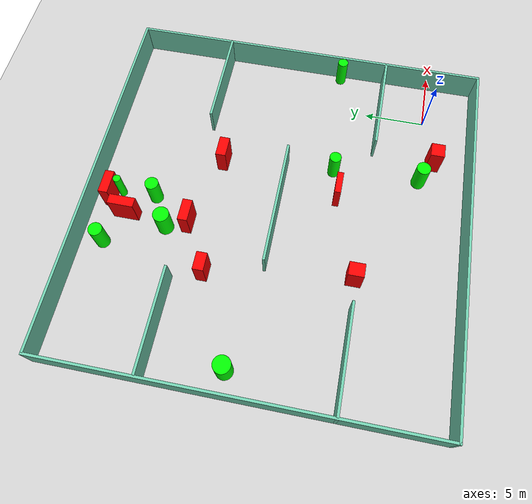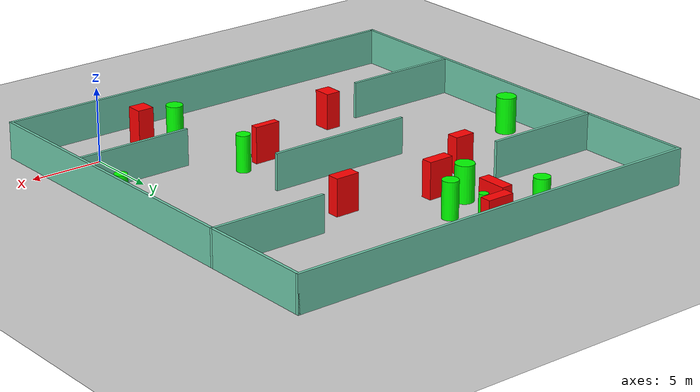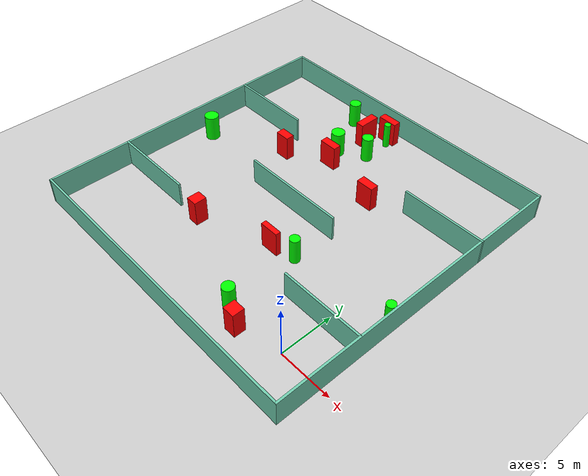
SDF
<sdf version="1.7">
 <world name="default">
  <light name="sun" type="directional">
   <pose>0 0 10 0 -0 0</pose>
   <diffuse>0.8 0.8 0.8 1</diffuse>
   <specular>0.2 0.2 0.2 1</specular>
   <attenuation>
    <range>1000</range>
    <constant>0.9</constant>
    <linear>0.01</linear>
    <quadratic>0.001</quadratic>
   </attenuation>
   <direction>-0.5 0.1 -0.9</direction>
   <spot><inner_angle>0</inner_angle><outer_angle>0</outer_angle><falloff>0</falloff></spot>
  </light>
  <model name="ground_plane">
   <static>1</static>
   <link name="link">
    <collision name="collision">
     <geometry><plane><normal>0 0 1</normal><size>100 100</size></plane></geometry>
     <surface>
      <contact><collide_bitmask>65535</collide_bitmask></contact>
      <friction><ode><mu>100</mu><mu2>50</mu2></ode></friction>
     </surface>
    </collision>
    <visual name="visual">
     <cast_shadows>0</cast_shadows>
     <geometry><plane><normal>0 0 1</normal><size>100 100</size></plane></geometry>
     <material>
      <script><uri>file://media/materials/scripts/gazebo.material</uri><name>Gazebo/Grey</name></script>
     </material>
    </visual>
   </link>
  </model>
  <gravity>0 0 -9.8</gravity>
  <magnetic_field>6e-06 2.3e-05 -4.2e-05</magnetic_field>
  <atmosphere type="adiabatic"/>
  <physics type="ode">
   <max_step_size>0.001</max_step_size>
   <real_time_factor>1</real_time_factor>
   <real_time_update_rate>1000</real_time_update_rate>
  </physics>
  <scene><ambient>0.4 0.4 0.4 1</ambient><background>0.7 0.7 0.7 1</background><shadows>1</shadows></scene>
  <spherical_coordinates>
   <surface_model>EARTH_WGS84</surface_model>
   <latitude_deg>0</latitude_deg>
   <longitude_deg>0</longitude_deg>
   <elevation>0</elevation>
   <heading_deg>0</heading_deg>
  </spherical_coordinates>
  <model name="my_base_walls">
   <link name="Wall_10">
    <collision name="Wall_10_Collision">
     <geometry><box><size>8.2 0.2 2.5</size></box></geometry>
     <pose>0 0 1.25 0 -0 0</pose>
    </collision>
    <visual name="Wall_10_Visual">
     <pose>0 0 1.25 0 -0 0</pose>
     <geometry><box><size>8.2 0.2 2.5</size></box></geometry>
     <material>
      <script><uri>file://media/materials/scripts/gazebo.material</uri><name>Gazebo/Grey</name></script>
      <ambient>0.435294 0.796078 0.67451 1</ambient>
     </material>
     <meta><layer>0</layer></meta>
    </visual>
    <pose>-11 -7 0 0 -0 0</pose>
   </link>
   <link name="Wall_12">
    <collision name="Wall_12_Collision">
     <geometry><box><size>8.2 0.2 2.5</size></box></geometry>
     <pose>0 0 1.25 0 -0 0</pose>
    </collision>
    <visual name="Wall_12_Visual">
     <pose>0 0 1.25 0 -0 0</pose>
     <geometry><box><size>8.2 0.2 2.5</size></box></geometry>
     <material>
      <script><uri>file://media/materials/scripts/gazebo.material</uri><name>Gazebo/Grey</name></script>
      <ambient>0.435294 0.796078 0.67451 1</ambient>
     </material>
     <meta><layer>0</layer></meta>
    </visual>
    <pose>-11 7 0 0 -0 0</pose>
   </link>
   <link name="Wall_14">
    <collision name="Wall_14_Collision">
     <geometry><box><size>8.2 0.2 2.5</size></box></geometry>
     <pose>0 0 1.25 0 -0 0</pose>
    </collision>
    <visual name="Wall_14_Visual">
     <pose>0 0 1.25 0 -0 0</pose>
     <geometry><box><size>8.2 0.2 2.5</size></box></geometry>
     <material>
      <script><uri>file://media/materials/scripts/gazebo.material</uri><name>Gazebo/Grey</name></script>
      <ambient>0.435294 0.796078 0.67451 1</ambient>
     </material>
     <meta><layer>0</layer></meta>
    </visual>
    <pose>11 7 0 0 -0 3.14159</pose>
   </link>
   <link name="Wall_16">
    <collision name="Wall_16_Collision">
     <geometry><box><size>10.2 0.2 2.5</size></box></geometry>
     <pose>0 0 1.25 0 -0 0</pose>
    </collision>
    <visual name="Wall_16_Visual">
     <pose>0 0 1.25 0 -0 0</pose>
     <geometry><box><size>10.2 0.2 2.5</size></box></geometry>
     <material>
      <script><uri>file://media/materials/scripts/gazebo.material</uri><name>Gazebo/Grey</name></script>
      <ambient>0.435294 0.796078 0.67451 1</ambient>
     </material>
     <meta><layer>0</layer></meta>
    </visual>
    <pose>0 0 0 0 -0 3.14159</pose>
   </link>
   <link name="Wall_2">
    <collision name="Wall_2_Collision">
     <geometry><box><size>30.2 0.2 2.5</size></box></geometry>
     <pose>0 0 1.25 0 -0 0</pose>
    </collision>
    <visual name="Wall_2_Visual">
     <pose>0 0 1.25 0 -0 0</pose>
     <geometry><box><size>30.2 0.2 2.5</size></box></geometry>
     <material>
      <script><uri>file://media/materials/scripts/gazebo.material</uri><name>Gazebo/Grey</name></script>
      <ambient>0.435294 0.796078 0.67451 1</ambient>
     </material>
     <meta><layer>0</layer></meta>
    </visual>
    <pose>0 -15 0 0 -0 3.14159</pose>
   </link>
   <link name="Wall_3">
    <collision name="Wall_3_Collision">
     <geometry><box><size>30.2 0.2 2.5</size></box></geometry>
     <pose>0 0 1.25 0 -0 0</pose>
    </collision>
    <visual name="Wall_3_Visual">
     <pose>0 0 1.25 0 -0 0</pose>
     <geometry><box><size>30.2 0.2 2.5</size></box></geometry>
     <material>
      <script><uri>file://media/materials/scripts/gazebo.material</uri><name>Gazebo/Grey</name></script>
      <ambient>0.435294 0.796078 0.67451 1</ambient>
     </material>
     <meta><layer>0</layer></meta>
    </visual>
    <pose>-15 0 0 0 -0 1.5708</pose>
   </link>
   <link name="Wall_4">
    <collision name="Wall_4_Collision">
     <geometry><box><size>30.2 0.2 2.5</size></box></geometry>
     <pose>0 0 1.25 0 -0 0</pose>
    </collision>
    <visual name="Wall_4_Visual">
     <pose>0 0 1.25 0 -0 0</pose>
     <geometry><box><size>30.2 0.2 2.5</size></box></geometry>
     <material>
      <script><uri>file://media/materials/scripts/gazebo.material</uri><name>Gazebo/Grey</name></script>
      <ambient>0.435294 0.796078 0.67451 1</ambient>
     </material>
     <meta><layer>0</layer></meta>
    </visual>
    <pose>0 15 0 0 -0 0</pose>
   </link>
   <link name="Wall_6">
    <collision name="Wall_6_Collision">
     <geometry><box><size>30.2 0.2 2.5</size></box></geometry>
     <pose>0 0 1.25 0 -0 0</pose>
    </collision>
    <visual name="Wall_6_Visual">
     <pose>0 0 1.25 0 -0 0</pose>
     <geometry><box><size>30.2 0.2 2.5</size></box></geometry>
     <material>
      <script><uri>file://media/materials/scripts/gazebo.material</uri><name>Gazebo/Grey</name></script>
      <ambient>0.435294 0.796078 0.67451 1</ambient>
     </material>
     <meta><layer>0</layer></meta>
    </visual>
    <pose>15 0 0 0 -0 1.5708</pose>
   </link>
   <link name="Wall_8">
    <collision name="Wall_8_Collision">
     <geometry><box><size>8.2 0.2 2.5</size></box></geometry>
     <pose>0 0 1.25 0 -0 0</pose>
    </collision>
    <visual name="Wall_8_Visual">
     <pose>0 0 1.25 0 -0 0</pose>
     <geometry><box><size>8.2 0.2 2.5</size></box></geometry>
     <material>
      <script><uri>file://media/materials/scripts/gazebo.material</uri><name>Gazebo/Grey</name></script>
      <ambient>0.435294 0.796078 0.67451 1</ambient>
     </material>
     <meta><layer>0</layer></meta>
    </visual>
    <pose>11 -7 0 0 -0 3.14159</pose>
   </link>
   <static>1</static>
   <pose>-11 11 0 0 -0 0</pose>
  </model>
  <model name="cylinder1">
   <static>1</static>
   <link name="link">
    <inertial>
     <mass>1</mass>
     <inertia><ixx>0.5</ixx><ixy>0</ixy><ixz>0</ixz><iyy>0.5</iyy><iyz>0</iyz><izz>1</izz></inertia>
    </inertial>
    <collision name="collision">
     <geometry><cylinder><radius>0.5469478343509668</radius><length>2.5</length></cylinder></geometry>
    </collision>
    <visual name="visual">
     <geometry><cylinder><radius>0.5469478343509668</radius><length>2.5</length></cylinder></geometry>
     <material>
      <ambient>0 1 0 1</ambient>
      <diffuse>0 1 0 1</diffuse>
      <specular>0.1 0.1 0.1 1</specular>
      <emissive>0 0 0 0</emissive>
     </material>
    </visual>
   </link>
   <pose>-16.111838705038043 24.09502893183314 1.25 0 0 0</pose>
  </model>
  <model name="cylinder2">
   <static>1</static>
   <link name="link">
    <inertial>
     <mass>1</mass>
     <inertia><ixx>0.5</ixx><ixy>0</ixy><ixz>0</ixz><iyy>0.5</iyy><iyz>0</iyz><izz>1</izz></inertia>
    </inertial>
    <collision name="collision">
     <geometry><cylinder><radius>0.3085206245426753</radius><length>2.5</length></cylinder></geometry>
    </collision>
    <visual name="visual">
     <geometry><cylinder><radius>0.3085206245426753</radius><length>2.5</length></cylinder></geometry>
     <material>
      <ambient>0 1 0 1</ambient>
      <diffuse>0 1 0 1</diffuse>
      <specular>0.1 0.1 0.1 1</specular>
      <emissive>0 0 0 0</emissive>
     </material>
    </visual>
   </link>
   <pose>-11.586611646357774 23.851511104470603 1.25 0 0 0</pose>
  </model>
  <model name="cylinder3">
   <static>1</static>
   <link name="link">
    <inertial>
     <mass>1</mass>
     <inertia><ixx>0.5</ixx><ixy>0</ixy><ixz>0</ixz><iyy>0.5</iyy><iyz>0</iyz><izz>1</izz></inertia>
    </inertial>
    <collision name="collision">
     <geometry><cylinder><radius>0.6422752736959326</radius><length>2.5</length></cylinder></geometry>
    </collision>
    <visual name="visual">
     <geometry><cylinder><radius>0.6422752736959326</radius><length>2.5</length></cylinder></geometry>
     <material>
      <ambient>0 1 0 1</ambient>
      <diffuse>0 1 0 1</diffuse>
      <specular>0.1 0.1 0.1 1</specular>
      <emissive>0 0 0 0</emissive>
     </material>
    </visual>
   </link>
   <pose>-13.949176204703198 19.53407345399616 1.25 0 0 0</pose>
  </model>
  <model name="cylinder4">
   <static>1</static>
   <link name="link">
    <inertial>
     <mass>1</mass>
     <inertia><ixx>0.5</ixx><ixy>0</ixy><ixz>0</ixz><iyy>0.5</iyy><iyz>0</iyz><izz>1</izz></inertia>
    </inertial>
    <collision name="collision">
     <geometry><cylinder><radius>0.5374895704451692</radius><length>2.5</length></cylinder></geometry>
    </collision>
    <visual name="visual">
     <geometry><cylinder><radius>0.5374895704451692</radius><length>2.5</length></cylinder></geometry>
     <material>
      <ambient>0 1 0 1</ambient>
      <diffuse>0 1 0 1</diffuse>
      <specular>0.1 0.1 0.1 1</specular>
      <emissive>0 0 0 0</emissive>
     </material>
    </visual>
   </link>
   <pose>-11.476779475247824 21.00674892619971 1.25 0 0 0</pose>
  </model>
  <model name="cylinder5">
   <static>1</static>
   <link name="link">
    <inertial>
     <mass>1</mass>
     <inertia><ixx>0.5</ixx><ixy>0</ixy><ixz>0</ixz><iyy>0.5</iyy><iyz>0</iyz><izz>1</izz></inertia>
    </inertial>
    <collision name="collision">
     <geometry><cylinder><radius>0.42837669836683734</radius><length>2.5</length></cylinder></geometry>
    </collision>
    <visual name="visual">
     <geometry><cylinder><radius>0.42837669836683734</radius><length>2.5</length></cylinder></geometry>
     <material>
      <ambient>0 1 0 1</ambient>
      <diffuse>0 1 0 1</diffuse>
      <specular>0.1 0.1 0.1 1</specular>
      <emissive>0 0 0 0</emissive>
     </material>
    </visual>
   </link>
   <pose>3.4712589163161205 7.796891115985936 1.25 0 0 0</pose>
  </model>
  <model name="cylinder6">
   <static>1</static>
   <link name="link">
    <inertial>
     <mass>1</mass>
     <inertia><ixx>0.5</ixx><ixy>0</ixy><ixz>0</ixz><iyy>0.5</iyy><iyz>0</iyz><izz>1</izz></inertia>
    </inertial>
    <collision name="collision">
     <geometry><cylinder><radius>0.47357204938077957</radius><length>2.5</length></cylinder></geometry>
    </collision>
    <visual name="visual">
     <geometry><cylinder><radius>0.47357204938077957</radius><length>2.5</length></cylinder></geometry>
     <material>
      <ambient>0 1 0 1</ambient>
      <diffuse>0 1 0 1</diffuse>
      <specular>0.1 0.1 0.1 1</specular>
      <emissive>0 0 0 0</emissive>
     </material>
    </visual>
   </link>
   <pose>-6.313261067343415 7.034504877293548 1.25 0 0 0</pose>
  </model>
  <model name="cylinder7">
   <static>1</static>
   <link name="link">
    <inertial>
     <mass>1</mass>
     <inertia><ixx>0.5</ixx><ixy>0</ixy><ixz>0</ixz><iyy>0.5</iyy><iyz>0</iyz><izz>1</izz></inertia>
    </inertial>
    <collision name="collision">
     <geometry><cylinder><radius>0.5656466809598588</radius><length>2.5</length></cylinder></geometry>
    </collision>
    <visual name="visual">
     <geometry><cylinder><radius>0.5656466809598588</radius><length>2.5</length></cylinder></geometry>
     <material>
      <ambient>0 1 0 1</ambient>
      <diffuse>0 1 0 1</diffuse>
      <specular>0.1 0.1 0.1 1</specular>
      <emissive>0 0 0 0</emissive>
     </material>
    </visual>
   </link>
   <pose>-5.98872167184456 -0.08263630371444908 1.25 0 0 0</pose>
  </model>
  <model name="cylinder8">
   <static>1</static>
   <link name="link">
    <inertial>
     <mass>1</mass>
     <inertia><ixx>0.5</ixx><ixy>0</ixy><ixz>0</ixz><iyy>0.5</iyy><iyz>0</iyz><izz>1</izz></inertia>
    </inertial>
    <collision name="collision">
     <geometry><cylinder><radius>0.6706366149159015</radius><length>2.5</length></cylinder></geometry>
    </collision>
    <visual name="visual">
     <geometry><cylinder><radius>0.6706366149159015</radius><length>2.5</length></cylinder></geometry>
     <material>
      <ambient>0 1 0 1</ambient>
      <diffuse>0 1 0 1</diffuse>
      <specular>0.1 0.1 0.1 1</specular>
      <emissive>0 0 0 0</emissive>
     </material>
    </visual>
   </link>
   <pose>-24.096641085200805 12.273918755409806 1.25 0 0 0</pose>
  </model>
  <model name="box1">
   <static>1</static>
   <link name="link">
    <inertial>
     <mass>1</mass>
     <inertia><ixx>0.083</ixx><ixy>0</ixy><ixz>0</ixz><iyy>0.083</iyy><iyz>0</iyz><izz>0.083</izz></inertia>
    </inertial>
    <collision name="collision">
     <geometry><box><size>1.4205923020714755 0.8422332564018421 2.5</size></box></geometry>
    </collision>
    <visual name="visual">
     <geometry><box><size>1.4205923020714755 0.8422332564018421 2.5</size></box></geometry>
     <material>
      <ambient>1 0 0 1</ambient>
      <diffuse>1 0 0 1</diffuse>
      <specular>0.1 0.1 0.1 1</specular>
      <emissive>0 0 0 0</emissive>
     </material>
    </visual>
    <sensor name="my_contact" type="contact">
     <contact><collision>box_collision</collision><topic>__default_topic__</topic></contact>
    </sensor>
   </link>
   <pose>-17.090920262770197 15.619570191653363 1.25 0 0 0</pose>
  </model>
  <model name="box2">
   <static>1</static>
   <link name="link">
    <inertial>
     <mass>1</mass>
     <inertia><ixx>0.083</ixx><ixy>0</ixy><ixz>0</ixz><iyy>0.083</iyy><iyz>0</iyz><izz>0.083</izz></inertia>
    </inertial>
    <collision name="collision">
     <geometry><box><size>1.826314991946441 0.5083252615027334 2.5</size></box></geometry>
    </collision>
    <visual name="visual">
     <geometry><box><size>1.826314991946441 0.5083252615027334 2.5</size></box></geometry>
     <material>
      <ambient>1 0 0 1</ambient>
      <diffuse>1 0 0 1</diffuse>
      <specular>0.1 0.1 0.1 1</specular>
      <emissive>0 0 0 0</emissive>
     </material>
    </visual>
    <sensor name="my_contact" type="contact">
     <contact><collision>box_collision</collision><topic>__default_topic__</topic></contact>
    </sensor>
   </link>
   <pose>-8.534072096459937 6.410214371915288 1.25 0 0 0</pose>
  </model>
  <model name="box3">
   <static>1</static>
   <link name="link">
    <inertial>
     <mass>1</mass>
     <inertia><ixx>0.083</ixx><ixy>0</ixy><ixz>0</ixz><iyy>0.083</iyy><iyz>0</iyz><izz>0.083</izz></inertia>
    </inertial>
    <collision name="collision">
     <geometry><box><size>1.9091024183881828 0.7470452627150147 2.5</size></box></geometry>
    </collision>
    <visual name="visual">
     <geometry><box><size>1.9091024183881828 0.7470452627150147 2.5</size></box></geometry>
     <material>
      <ambient>1 0 0 1</ambient>
      <diffuse>1 0 0 1</diffuse>
      <specular>0.1 0.1 0.1 1</specular>
      <emissive>0 0 0 0</emissive>
     </material>
    </visual>
    <sensor name="my_contact" type="contact">
     <contact><collision>box_collision</collision><topic>__default_topic__</topic></contact>
    </sensor>
   </link>
   <pose>-11.982399815790973 24.588799454634284 1.25 0 0 0</pose>
  </model>
  <model name="box4">
   <static>1</static>
   <link name="link">
    <inertial>
     <mass>1</mass>
     <inertia><ixx>0.083</ixx><ixy>0</ixy><ixz>0</ixz><iyy>0.083</iyy><iyz>0</iyz><izz>0.083</izz></inertia>
    </inertial>
    <collision name="collision">
     <geometry><box><size>1.6933960584311307 0.8257372406803483 2.5</size></box></geometry>
    </collision>
    <visual name="visual">
     <geometry><box><size>1.6933960584311307 0.8257372406803483 2.5</size></box></geometry>
     <material>
      <ambient>1 0 0 1</ambient>
      <diffuse>1 0 0 1</diffuse>
      <specular>0.1 0.1 0.1 1</specular>
      <emissive>0 0 0 0</emissive>
     </material>
    </visual>
    <sensor name="my_contact" type="contact">
     <contact><collision>box_collision</collision><topic>__default_topic__</topic></contact>
    </sensor>
   </link>
   <pose>-7.032159873714736 16.273251538383114 1.25 0 0 0</pose>
  </model>
  <model name="box5">
   <static>1</static>
   <link name="link">
    <inertial>
     <mass>1</mass>
     <inertia><ixx>0.083</ixx><ixy>0</ixy><ixz>0</ixz><iyy>0.083</iyy><iyz>0</iyz><izz>0.083</izz></inertia>
    </inertial>
    <collision name="collision">
     <geometry><box><size>1.1510848471789643 1.1109753085252778 2.5</size></box></geometry>
    </collision>
    <visual name="visual">
     <geometry><box><size>1.1510848471789643 1.1109753085252778 2.5</size></box></geometry>
     <material>
      <ambient>1 0 0 1</ambient>
      <diffuse>1 0 0 1</diffuse>
      <specular>0.1 0.1 0.1 1</specular>
      <emissive>0 0 0 0</emissive>
     </material>
    </visual>
    <sensor name="my_contact" type="contact">
     <contact><collision>box_collision</collision><topic>__default_topic__</topic></contact>
    </sensor>
   </link>
   <pose>-4.047615185126828 -1.0970414584558914 1.25 0 0 0</pose>
  </model>
  <model name="box6">
   <static>1</static>
   <link name="link">
    <inertial>
     <mass>1</mass>
     <inertia><ixx>0.083</ixx><ixy>0</ixy><ixz>0</ixz><iyy>0.083</iyy><iyz>0</iyz><izz>0.083</izz></inertia>
    </inertial>
    <collision name="collision">
     <geometry><box><size>1.7701083913431264 0.773568912566285 2.5</size></box></geometry>
    </collision>
    <visual name="visual">
     <geometry><box><size>1.7701083913431264 0.773568912566285 2.5</size></box></geometry>
     <material>
      <ambient>1 0 0 1</ambient>
      <diffuse>1 0 0 1</diffuse>
      <specular>0.1 0.1 0.1 1</specular>
      <emissive>0 0 0 0</emissive>
     </material>
    </visual>
    <sensor name="my_contact" type="contact">
     <contact><collision>box_collision</collision><topic>__default_topic__</topic></contact>
    </sensor>
   </link>
   <pose>-13.21644421897805 17.809781247796224 1.25 0 0 0</pose>
  </model>
  <model name="box7">
   <static>1</static>
   <link name="link">
    <inertial>
     <mass>1</mass>
     <inertia><ixx>0.083</ixx><ixy>0</ixy><ixz>0</ixz><iyy>0.083</iyy><iyz>0</iyz><izz>0.083</izz></inertia>
    </inertial>
    <collision name="collision">
     <geometry><box><size>1.0614608311801388 1.2217015950529069 2.5</size></box></geometry>
    </collision>
    <visual name="visual">
     <geometry><box><size>1.0614608311801388 1.2217015950529069 2.5</size></box></geometry>
     <material>
      <ambient>1 0 0 1</ambient>
      <diffuse>1 0 0 1</diffuse>
      <specular>0.1 0.1 0.1 1</specular>
      <emissive>0 0 0 0</emissive>
     </material>
    </visual>
    <sensor name="my_contact" type="contact">
     <contact><collision>box_collision</collision><topic>__default_topic__</topic></contact>
    </sensor>
   </link>
   <pose>-15.512761306804133 4.0795924276194615 1.25 0 0 0</pose>
  </model>
  <model name="box8">
   <static>1</static>
   <link name="link">
    <inertial>
     <mass>1</mass>
     <inertia><ixx>0.083</ixx><ixy>0</ixy><ixz>0</ixz><iyy>0.083</iyy><iyz>0</iyz><izz>0.083</izz></inertia>
    </inertial>
    <collision name="collision">
     <geometry><box><size>0.7789046143690717 2.0888761031131438 2.5</size></box></geometry>
    </collision>
    <visual name="visual">
     <geometry><box><size>0.7789046143690717 2.0888761031131438 2.5</size></box></geometry>
     <material>
      <ambient>1 0 0 1</ambient>
      <diffuse>1 0 0 1</diffuse>
      <specular>0.1 0.1 0.1 1</specular>
      <emissive>0 0 0 0</emissive>
     </material>
    </visual>
    <sensor name="my_contact" type="contact">
     <contact><collision>box_collision</collision><topic>__default_topic__</topic></contact>
    </sensor>
   </link>
   <pose>-13.400281226788113 22.909755429243972 1.25 0 0 0</pose>
  </model>
 </world>
</sdf>
